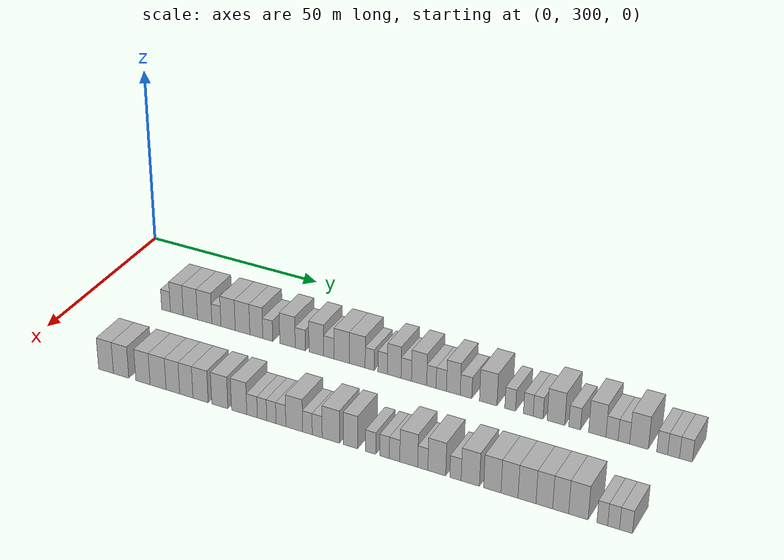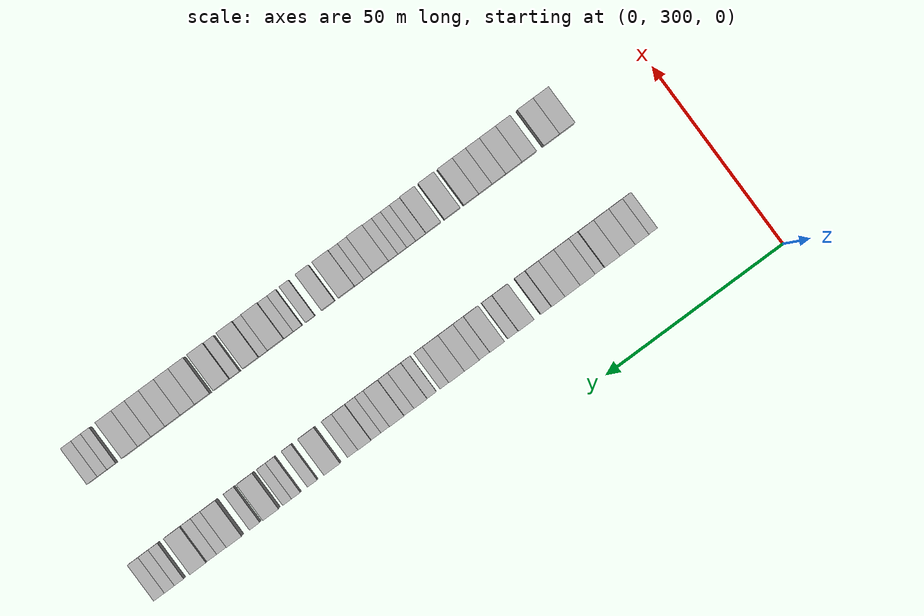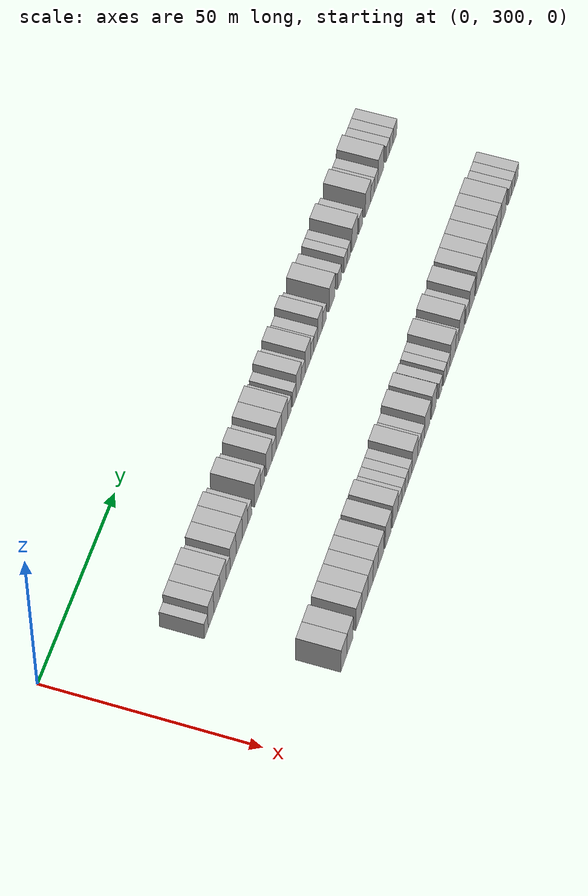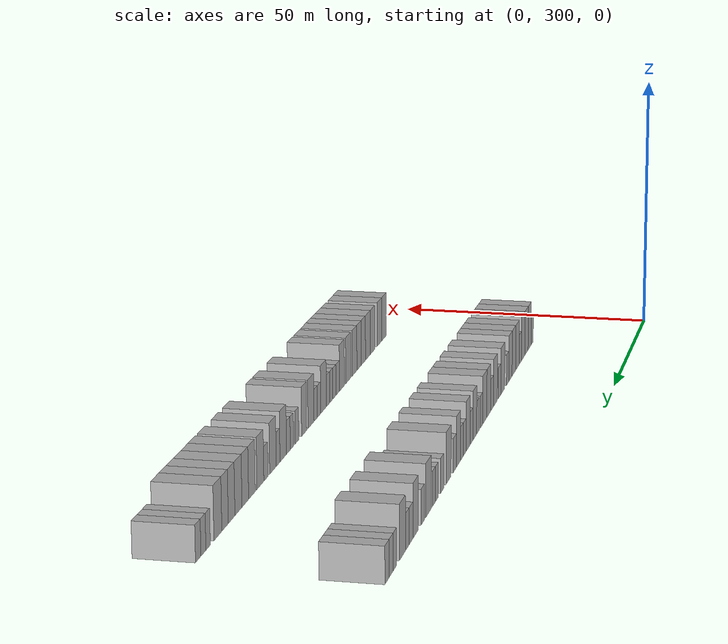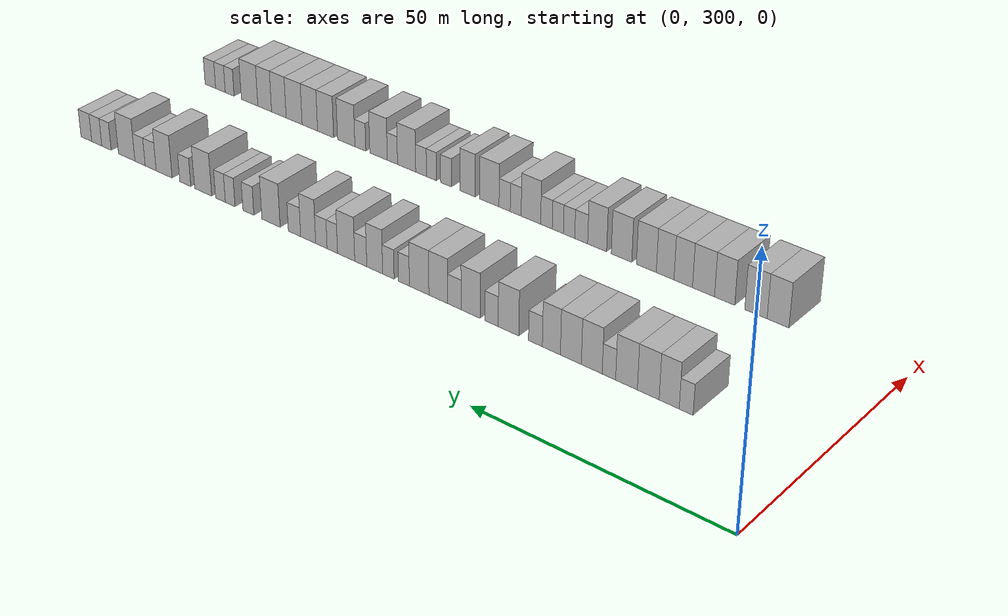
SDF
<sdf version="1.6">
 <world name="default">
  <model name="building_191">
   <static>1</static>
   <pose>25.0000 322.5116 0 0.000000 0.000000 0.000000</pose>
   <link name="link">
    <pose>0 0 3.00 0 0 0</pose>
    <collision name="collision"><geometry><box><size>10.0000 2.6368 6.0000</size></box></geometry></collision>
    <visual name="visual">
     <cast_shadows>0</cast_shadows>
     <geometry><box><size>10.0000 2.6368 6.0000</size></box></geometry>
     <material>
      <script>
       <uri>model://HANNAS_wall/materials/scripts</uri>
       <uri>model://HANNAS_wall/materials/textures</uri>
       <name>vrc/HANNAS_wall</name>
      </script>
     </material>
    </visual>
   </link>
  </model>
  <model name="building_192">
   <static>1</static>
   <pose>25.0000 325.7472 0 0.000000 0.000000 0.000000</pose>
   <link name="link">
    <pose>0 0 4.50 0 0 0</pose>
    <collision name="collision"><geometry><box><size>10.0000 3.8342 9.0000</size></box></geometry></collision>
    <visual name="visual">
     <cast_shadows>0</cast_shadows>
     <geometry><box><size>10.0000 3.8342 9.0000</size></box></geometry>
     <material>
      <script>
       <uri>model://HANNAS_wall/materials/scripts</uri>
       <uri>model://HANNAS_wall/materials/textures</uri>
       <name>vrc/HANNAS_wall</name>
      </script>
     </material>
    </visual>
   </link>
  </model>
  <model name="building_193">
   <static>1</static>
   <pose>25.0000 329.7707 0 0.000000 0.000000 0.000000</pose>
   <link name="link">
    <pose>0 0 4.50 0 0 0</pose>
    <collision name="collision"><geometry><box><size>10.0000 4.2128 9.0000</size></box></geometry></collision>
    <visual name="visual">
     <cast_shadows>0</cast_shadows>
     <geometry><box><size>10.0000 4.2128 9.0000</size></box></geometry>
     <material>
      <script>
       <uri>model://HANNAS_wall/materials/scripts</uri>
       <uri>model://HANNAS_wall/materials/textures</uri>
       <name>vrc/HANNAS_wall</name>
      </script>
     </material>
    </visual>
   </link>
  </model>
  <model name="building_194">
   <static>1</static>
   <pose>25.0000 334.0109 0 0.000000 0.000000 0.000000</pose>
   <link name="link">
    <pose>0 0 4.50 0 0 0</pose>
    <collision name="collision"><geometry><box><size>10.0000 4.2677 9.0000</size></box></geometry></collision>
    <visual name="visual">
     <cast_shadows>0</cast_shadows>
     <geometry><box><size>10.0000 4.2677 9.0000</size></box></geometry>
     <material>
      <script>
       <uri>model://HANNAS_wall/materials/scripts</uri>
       <uri>model://HANNAS_wall/materials/textures</uri>
       <name>vrc/HANNAS_wall</name>
      </script>
     </material>
    </visual>
   </link>
  </model>
  <model name="building_195">
   <static>1</static>
   <pose>25.0000 337.4736 0 0.000000 0.000000 0.000000</pose>
   <link name="link">
    <pose>0 0 3.00 0 0 0</pose>
    <collision name="collision"><geometry><box><size>10.0000 2.6576 6.0000</size></box></geometry></collision>
    <visual name="visual">
     <cast_shadows>0</cast_shadows>
     <geometry><box><size>10.0000 2.6576 6.0000</size></box></geometry>
     <material>
      <script>
       <uri>model://HANNAS_wall/materials/scripts</uri>
       <uri>model://HANNAS_wall/materials/textures</uri>
       <name>vrc/HANNAS_wall</name>
      </script>
     </material>
    </visual>
   </link>
  </model>
  <model name="building_196">
   <static>1</static>
   <pose>25.0000 340.8906 0 0.000000 0.000000 0.000000</pose>
   <link name="link">
    <pose>0 0 4.50 0 0 0</pose>
    <collision name="collision"><geometry><box><size>10.0000 4.1764 9.0000</size></box></geometry></collision>
    <visual name="visual">
     <cast_shadows>0</cast_shadows>
     <geometry><box><size>10.0000 4.1764 9.0000</size></box></geometry>
     <material>
      <script>
       <uri>model://HANNAS_wall/materials/scripts</uri>
       <uri>model://HANNAS_wall/materials/textures</uri>
       <name>vrc/HANNAS_wall</name>
      </script>
     </material>
    </visual>
   </link>
  </model>
  <model name="building_197">
   <static>1</static>
   <pose>25.0000 345.0989 0 0.000000 0.000000 0.000000</pose>
   <link name="link">
    <pose>0 0 4.50 0 0 0</pose>
    <collision name="collision"><geometry><box><size>10.0000 4.2403 9.0000</size></box></geometry></collision>
    <visual name="visual">
     <cast_shadows>0</cast_shadows>
     <geometry><box><size>10.0000 4.2403 9.0000</size></box></geometry>
     <material>
      <script>
       <uri>model://HANNAS_wall/materials/scripts</uri>
       <uri>model://HANNAS_wall/materials/textures</uri>
       <name>vrc/HANNAS_wall</name>
      </script>
     </material>
    </visual>
   </link>
  </model>
  <model name="building_198">
   <static>1</static>
   <pose>25.0000 349.0729 0 0.000000 0.000000 0.000000</pose>
   <link name="link">
    <pose>0 0 4.50 0 0 0</pose>
    <collision name="collision"><geometry><box><size>10.0000 3.7077 9.0000</size></box></geometry></collision>
    <visual name="visual">
     <cast_shadows>0</cast_shadows>
     <geometry><box><size>10.0000 3.7077 9.0000</size></box></geometry>
     <material>
      <script>
       <uri>model://HANNAS_wall/materials/scripts</uri>
       <uri>model://HANNAS_wall/materials/textures</uri>
       <name>vrc/HANNAS_wall</name>
      </script>
     </material>
    </visual>
   </link>
  </model>
  <model name="building_199">
   <static>1</static>
   <pose>25.0000 352.3594 0 0.000000 0.000000 0.000000</pose>
   <link name="link">
    <pose>0 0 3.00 0 0 0</pose>
    <collision name="collision"><geometry><box><size>10.0000 2.8652 6.0000</size></box></geometry></collision>
    <visual name="visual">
     <cast_shadows>0</cast_shadows>
     <geometry><box><size>10.0000 2.8652 6.0000</size></box></geometry>
     <material>
      <script>
       <uri>model://HANNAS_wall/materials/scripts</uri>
       <uri>model://HANNAS_wall/materials/textures</uri>
       <name>vrc/HANNAS_wall</name>
      </script>
     </material>
    </visual>
   </link>
  </model>
  <model name="building_200">
   <static>1</static>
   <pose>25.0000 357.9757 0 0.000000 0.000000 0.000000</pose>
   <link name="link">
    <pose>0 0 4.50 0 0 0</pose>
    <collision name="collision"><geometry><box><size>10.0000 4.3674 9.0000</size></box></geometry></collision>
    <visual name="visual">
     <cast_shadows>0</cast_shadows>
     <geometry><box><size>10.0000 4.3674 9.0000</size></box></geometry>
     <material>
      <script>
       <uri>model://HANNAS_wall/materials/scripts</uri>
       <uri>model://HANNAS_wall/materials/textures</uri>
       <name>vrc/HANNAS_wall</name>
      </script>
     </material>
    </visual>
   </link>
  </model>
  <model name="building_201">
   <static>1</static>
   <pose>25.0000 361.5943 0 0.000000 0.000000 0.000000</pose>
   <link name="link">
    <pose>0 0 3.00 0 0 0</pose>
    <collision name="collision"><geometry><box><size>10.0000 2.8697 6.0000</size></box></geometry></collision>
    <visual name="visual">
     <cast_shadows>0</cast_shadows>
     <geometry><box><size>10.0000 2.8697 6.0000</size></box></geometry>
     <material>
      <script>
       <uri>model://HANNAS_wall/materials/scripts</uri>
       <uri>model://HANNAS_wall/materials/textures</uri>
       <name>vrc/HANNAS_wall</name>
      </script>
     </material>
    </visual>
   </link>
  </model>
  <model name="building_202">
   <static>1</static>
   <pose>25.0000 366.0715 0 0.000000 0.000000 0.000000</pose>
   <link name="link">
    <pose>0 0 4.50 0 0 0</pose>
    <collision name="collision"><geometry><box><size>10.0000 4.0849 9.0000</size></box></geometry></collision>
    <visual name="visual">
     <cast_shadows>0</cast_shadows>
     <geometry><box><size>10.0000 4.0849 9.0000</size></box></geometry>
     <material>
      <script>
       <uri>model://HANNAS_wall/materials/scripts</uri>
       <uri>model://HANNAS_wall/materials/textures</uri>
       <name>vrc/HANNAS_wall</name>
      </script>
     </material>
    </visual>
   </link>
  </model>
  <model name="building_203">
   <static>1</static>
   <pose>25.0000 369.5707 0 0.000000 0.000000 0.000000</pose>
   <link name="link">
    <pose>0 0 3.00 0 0 0</pose>
    <collision name="collision"><geometry><box><size>10.0000 2.9135 6.0000</size></box></geometry></collision>
    <visual name="visual">
     <cast_shadows>0</cast_shadows>
     <geometry><box><size>10.0000 2.9135 6.0000</size></box></geometry>
     <material>
      <script>
       <uri>model://HANNAS_wall/materials/scripts</uri>
       <uri>model://HANNAS_wall/materials/textures</uri>
       <name>vrc/HANNAS_wall</name>
      </script>
     </material>
    </visual>
   </link>
  </model>
  <model name="building_204">
   <static>1</static>
   <pose>25.0000 373.1101 0 0.000000 0.000000 0.000000</pose>
   <link name="link">
    <pose>0 0 4.50 0 0 0</pose>
    <collision name="collision"><geometry><box><size>10.0000 4.1653 9.0000</size></box></geometry></collision>
    <visual name="visual">
     <cast_shadows>0</cast_shadows>
     <geometry><box><size>10.0000 4.1653 9.0000</size></box></geometry>
     <material>
      <script>
       <uri>model://HANNAS_wall/materials/scripts</uri>
       <uri>model://HANNAS_wall/materials/textures</uri>
       <name>vrc/HANNAS_wall</name>
      </script>
     </material>
    </visual>
   </link>
  </model>
  <model name="building_205">
   <static>1</static>
   <pose>25.0000 377.3617 0 0.000000 0.000000 0.000000</pose>
   <link name="link">
    <pose>0 0 4.50 0 0 0</pose>
    <collision name="collision"><geometry><box><size>10.0000 4.3377 9.0000</size></box></geometry></collision>
    <visual name="visual">
     <cast_shadows>0</cast_shadows>
     <geometry><box><size>10.0000 4.3377 9.0000</size></box></geometry>
     <material>
      <script>
       <uri>model://HANNAS_wall/materials/scripts</uri>
       <uri>model://HANNAS_wall/materials/textures</uri>
       <name>vrc/HANNAS_wall</name>
      </script>
     </material>
    </visual>
   </link>
  </model>
  <model name="building_206">
   <static>1</static>
   <pose>25.0000 380.7585 0 0.000000 0.000000 0.000000</pose>
   <link name="link">
    <pose>0 0 3.00 0 0 0</pose>
    <collision name="collision"><geometry><box><size>10.0000 2.4560 6.0000</size></box></geometry></collision>
    <visual name="visual">
     <cast_shadows>0</cast_shadows>
     <geometry><box><size>10.0000 2.4560 6.0000</size></box></geometry>
     <material>
      <script>
       <uri>model://HANNAS_wall/materials/scripts</uri>
       <uri>model://HANNAS_wall/materials/textures</uri>
       <name>vrc/HANNAS_wall</name>
      </script>
     </material>
    </visual>
   </link>
  </model>
  <model name="building_207">
   <static>1</static>
   <pose>25.0000 384.2837 0 0.000000 0.000000 0.000000</pose>
   <link name="link">
    <pose>0 0 3.00 0 0 0</pose>
    <collision name="collision"><geometry><box><size>10.0000 2.5943 6.0000</size></box></geometry></collision>
    <visual name="visual">
     <cast_shadows>0</cast_shadows>
     <geometry><box><size>10.0000 2.5943 6.0000</size></box></geometry>
     <material>
      <script>
       <uri>model://HANNAS_wall/materials/scripts</uri>
       <uri>model://HANNAS_wall/materials/textures</uri>
       <name>vrc/HANNAS_wall</name>
      </script>
     </material>
    </visual>
   </link>
  </model>
  <model name="building_208">
   <static>1</static>
   <pose>25.0000 387.4065 0 0.000000 0.000000 0.000000</pose>
   <link name="link">
    <pose>0 0 4.50 0 0 0</pose>
    <collision name="collision"><geometry><box><size>10.0000 3.6515 9.0000</size></box></geometry></collision>
    <visual name="visual">
     <cast_shadows>0</cast_shadows>
     <geometry><box><size>10.0000 3.6515 9.0000</size></box></geometry>
     <material>
      <script>
       <uri>model://HANNAS_wall/materials/scripts</uri>
       <uri>model://HANNAS_wall/materials/textures</uri>
       <name>vrc/HANNAS_wall</name>
      </script>
     </material>
    </visual>
   </link>
  </model>
  <model name="building_209">
   <static>1</static>
   <pose>25.0000 390.6266 0 0.000000 0.000000 0.000000</pose>
   <link name="link">
    <pose>0 0 3.00 0 0 0</pose>
    <collision name="collision"><geometry><box><size>10.0000 2.7887 6.0000</size></box></geometry></collision>
    <visual name="visual">
     <cast_shadows>0</cast_shadows>
     <geometry><box><size>10.0000 2.7887 6.0000</size></box></geometry>
     <material>
      <script>
       <uri>model://HANNAS_wall/materials/scripts</uri>
       <uri>model://HANNAS_wall/materials/textures</uri>
       <name>vrc/HANNAS_wall</name>
      </script>
     </material>
    </visual>
   </link>
  </model>
  <model name="building_210">
   <static>1</static>
   <pose>25.0000 394.0349 0 0.000000 0.000000 0.000000</pose>
   <link name="link">
    <pose>0 0 4.50 0 0 0</pose>
    <collision name="collision"><geometry><box><size>10.0000 4.0277 9.0000</size></box></geometry></collision>
    <visual name="visual">
     <cast_shadows>0</cast_shadows>
     <geometry><box><size>10.0000 4.0277 9.0000</size></box></geometry>
     <material>
      <script>
       <uri>model://HANNAS_wall/materials/scripts</uri>
       <uri>model://HANNAS_wall/materials/textures</uri>
       <name>vrc/HANNAS_wall</name>
      </script>
     </material>
    </visual>
   </link>
  </model>
  <model name="building_211">
   <static>1</static>
   <pose>25.0000 397.2851 0 0.000000 0.000000 0.000000</pose>
   <link name="link">
    <pose>0 0 3.00 0 0 0</pose>
    <collision name="collision"><geometry><box><size>10.0000 2.4726 6.0000</size></box></geometry></collision>
    <visual name="visual">
     <cast_shadows>0</cast_shadows>
     <geometry><box><size>10.0000 2.4726 6.0000</size></box></geometry>
     <material>
      <script>
       <uri>model://HANNAS_wall/materials/scripts</uri>
       <uri>model://HANNAS_wall/materials/textures</uri>
       <name>vrc/HANNAS_wall</name>
      </script>
     </material>
    </visual>
   </link>
  </model>
  <model name="building_212">
   <static>1</static>
   <pose>25.0000 399.8736 0 0.000000 0.000000 0.000000</pose>
   <link name="link">
    <pose>0 0 3.00 0 0 0</pose>
    <collision name="collision"><geometry><box><size>10.0000 2.7045 6.0000</size></box></geometry></collision>
    <visual name="visual">
     <cast_shadows>0</cast_shadows>
     <geometry><box><size>10.0000 2.7045 6.0000</size></box></geometry>
     <material>
      <script>
       <uri>model://HANNAS_wall/materials/scripts</uri>
       <uri>model://HANNAS_wall/materials/textures</uri>
       <name>vrc/HANNAS_wall</name>
      </script>
     </material>
    </visual>
   </link>
  </model>
  <model name="building_213">
   <static>1</static>
   <pose>25.0000 403.0297 0 0.000000 0.000000 0.000000</pose>
   <link name="link">
    <pose>0 0 4.50 0 0 0</pose>
    <collision name="collision"><geometry><box><size>10.0000 3.6077 9.0000</size></box></geometry></collision>
    <visual name="visual">
     <cast_shadows>0</cast_shadows>
     <geometry><box><size>10.0000 3.6077 9.0000</size></box></geometry>
     <material>
      <script>
       <uri>model://HANNAS_wall/materials/scripts</uri>
       <uri>model://HANNAS_wall/materials/textures</uri>
       <name>vrc/HANNAS_wall</name>
      </script>
     </material>
    </visual>
   </link>
  </model>
  <model name="building_214">
   <static>1</static>
   <pose>25.0000 406.3293 0 0.000000 0.000000 0.000000</pose>
   <link name="link">
    <pose>0 0 3.00 0 0 0</pose>
    <collision name="collision"><geometry><box><size>10.0000 2.9914 6.0000</size></box></geometry></collision>
    <visual name="visual">
     <cast_shadows>0</cast_shadows>
     <geometry><box><size>10.0000 2.9914 6.0000</size></box></geometry>
     <material>
      <script>
       <uri>model://HANNAS_wall/materials/scripts</uri>
       <uri>model://HANNAS_wall/materials/textures</uri>
       <name>vrc/HANNAS_wall</name>
      </script>
     </material>
    </visual>
   </link>
  </model>
  <model name="building_215">
   <static>1</static>
   <pose>25.0000 412.0645 0 0.000000 0.000000 0.000000</pose>
   <link name="link">
    <pose>0 0 4.50 0 0 0</pose>
    <collision name="collision"><geometry><box><size>10.0000 4.4790 9.0000</size></box></geometry></collision>
    <visual name="visual">
     <cast_shadows>0</cast_shadows>
     <geometry><box><size>10.0000 4.4790 9.0000</size></box></geometry>
     <material>
      <script>
       <uri>model://HANNAS_wall/materials/scripts</uri>
       <uri>model://HANNAS_wall/materials/textures</uri>
       <name>vrc/HANNAS_wall</name>
      </script>
     </material>
    </visual>
   </link>
  </model>
  <model name="building_216">
   <static>1</static>
   <pose>25.0000 417.6675 0 0.000000 0.000000 0.000000</pose>
   <link name="link">
    <pose>0 0 3.00 0 0 0</pose>
    <collision name="collision"><geometry><box><size>10.0000 2.7269 6.0000</size></box></geometry></collision>
    <visual name="visual">
     <cast_shadows>0</cast_shadows>
     <geometry><box><size>10.0000 2.7269 6.0000</size></box></geometry>
     <material>
      <script>
       <uri>model://HANNAS_wall/materials/scripts</uri>
       <uri>model://HANNAS_wall/materials/textures</uri>
       <name>vrc/HANNAS_wall</name>
      </script>
     </material>
    </visual>
   </link>
  </model>
  <model name="building_217">
   <static>1</static>
   <pose>25.0000 422.2537 0 0.000000 0.000000 0.000000</pose>
   <link name="link">
    <pose>0 0 3.00 0 0 0</pose>
    <collision name="collision"><geometry><box><size>10.0000 2.4456 6.0000</size></box></geometry></collision>
    <visual name="visual">
     <cast_shadows>0</cast_shadows>
     <geometry><box><size>10.0000 2.4456 6.0000</size></box></geometry>
     <material>
      <script>
       <uri>model://HANNAS_wall/materials/scripts</uri>
       <uri>model://HANNAS_wall/materials/textures</uri>
       <name>vrc/HANNAS_wall</name>
      </script>
     </material>
    </visual>
   </link>
  </model>
  <model name="building_218">
   <static>1</static>
   <pose>25.0000 424.7183 0 0.000000 0.000000 0.000000</pose>
   <link name="link">
    <pose>0 0 3.00 0 0 0</pose>
    <collision name="collision"><geometry><box><size>10.0000 2.4835 6.0000</size></box></geometry></collision>
    <visual name="visual">
     <cast_shadows>0</cast_shadows>
     <geometry><box><size>10.0000 2.4835 6.0000</size></box></geometry>
     <material>
      <script>
       <uri>model://HANNAS_wall/materials/scripts</uri>
       <uri>model://HANNAS_wall/materials/textures</uri>
       <name>vrc/HANNAS_wall</name>
      </script>
     </material>
    </visual>
   </link>
  </model>
  <model name="building_219">
   <static>1</static>
   <pose>25.0000 429.1569 0 0.000000 0.000000 0.000000</pose>
   <link name="link">
    <pose>0 0 4.50 0 0 0</pose>
    <collision name="collision"><geometry><box><size>10.0000 4.3938 9.0000</size></box></geometry></collision>
    <visual name="visual">
     <cast_shadows>0</cast_shadows>
     <geometry><box><size>10.0000 4.3938 9.0000</size></box></geometry>
     <material>
      <script>
       <uri>model://HANNAS_wall/materials/scripts</uri>
       <uri>model://HANNAS_wall/materials/textures</uri>
       <name>vrc/HANNAS_wall</name>
      </script>
     </material>
    </visual>
   </link>
  </model>
  <model name="building_220">
   <static>1</static>
   <pose>25.0000 433.7958 0 0.000000 0.000000 0.000000</pose>
   <link name="link">
    <pose>0 0 3.00 0 0 0</pose>
    <collision name="collision"><geometry><box><size>10.0000 2.8840 6.0000</size></box></geometry></collision>
    <visual name="visual">
     <cast_shadows>0</cast_shadows>
     <geometry><box><size>10.0000 2.8840 6.0000</size></box></geometry>
     <material>
      <script>
       <uri>model://HANNAS_wall/materials/scripts</uri>
       <uri>model://HANNAS_wall/materials/textures</uri>
       <name>vrc/HANNAS_wall</name>
      </script>
     </material>
    </visual>
   </link>
  </model>
  <model name="building_221">
   <static>1</static>
   <pose>25.0000 439.3475 0 0.000000 0.000000 0.000000</pose>
   <link name="link">
    <pose>0 0 4.50 0 0 0</pose>
    <collision name="collision"><geometry><box><size>10.0000 4.2194 9.0000</size></box></geometry></collision>
    <visual name="visual">
     <cast_shadows>0</cast_shadows>
     <geometry><box><size>10.0000 4.2194 9.0000</size></box></geometry>
     <material>
      <script>
       <uri>model://HANNAS_wall/materials/scripts</uri>
       <uri>model://HANNAS_wall/materials/textures</uri>
       <name>vrc/HANNAS_wall</name>
      </script>
     </material>
    </visual>
   </link>
  </model>
  <model name="building_222">
   <static>1</static>
   <pose>25.0000 442.9299 0 0.000000 0.000000 0.000000</pose>
   <link name="link">
    <pose>0 0 3.00 0 0 0</pose>
    <collision name="collision"><geometry><box><size>10.0000 2.9454 6.0000</size></box></geometry></collision>
    <visual name="visual">
     <cast_shadows>0</cast_shadows>
     <geometry><box><size>10.0000 2.9454 6.0000</size></box></geometry>
     <material>
      <script>
       <uri>model://HANNAS_wall/materials/scripts</uri>
       <uri>model://HANNAS_wall/materials/textures</uri>
       <name>vrc/HANNAS_wall</name>
      </script>
     </material>
    </visual>
   </link>
  </model>
  <model name="building_223">
   <static>1</static>
   <pose>25.0000 445.7842 0 0.000000 0.000000 0.000000</pose>
   <link name="link">
    <pose>0 0 3.00 0 0 0</pose>
    <collision name="collision"><geometry><box><size>10.0000 2.7634 6.0000</size></box></geometry></collision>
    <visual name="visual">
     <cast_shadows>0</cast_shadows>
     <geometry><box><size>10.0000 2.7634 6.0000</size></box></geometry>
     <material>
      <script>
       <uri>model://HANNAS_wall/materials/scripts</uri>
       <uri>model://HANNAS_wall/materials/textures</uri>
       <name>vrc/HANNAS_wall</name>
      </script>
     </material>
    </visual>
   </link>
  </model>
  <model name="building_224">
   <static>1</static>
   <pose>25.0000 449.4012 0 0.000000 0.000000 0.000000</pose>
   <link name="link">
    <pose>0 0 4.50 0 0 0</pose>
    <collision name="collision"><geometry><box><size>10.0000 4.4705 9.0000</size></box></geometry></collision>
    <visual name="visual">
     <cast_shadows>0</cast_shadows>
     <geometry><box><size>10.0000 4.4705 9.0000</size></box></geometry>
     <material>
      <script>
       <uri>model://HANNAS_wall/materials/scripts</uri>
       <uri>model://HANNAS_wall/materials/textures</uri>
       <name>vrc/HANNAS_wall</name>
      </script>
     </material>
    </visual>
   </link>
  </model>
  <model name="building_225">
   <static>1</static>
   <pose>25.0000 454.9298 0 0.000000 0.000000 0.000000</pose>
   <link name="link">
    <pose>0 0 3.00 0 0 0</pose>
    <collision name="collision"><geometry><box><size>10.0000 2.5868 6.0000</size></box></geometry></collision>
    <visual name="visual">
     <cast_shadows>0</cast_shadows>
     <geometry><box><size>10.0000 2.5868 6.0000</size></box></geometry>
     <material>
      <script>
       <uri>model://HANNAS_wall/materials/scripts</uri>
       <uri>model://HANNAS_wall/materials/textures</uri>
       <name>vrc/HANNAS_wall</name>
      </script>
     </material>
    </visual>
   </link>
  </model>
  <model name="building_226">
   <static>1</static>
   <pose>25.0000 457.6241 0 0.000000 0.000000 0.000000</pose>
   <link name="link">
    <pose>0 0 3.00 0 0 0</pose>
    <collision name="collision"><geometry><box><size>10.0000 2.8017 6.0000</size></box></geometry></collision>
    <visual name="visual">
     <cast_shadows>0</cast_shadows>
     <geometry><box><size>10.0000 2.8017 6.0000</size></box></geometry>
     <material>
      <script>
       <uri>model://HANNAS_wall/materials/scripts</uri>
       <uri>model://HANNAS_wall/materials/textures</uri>
       <name>vrc/HANNAS_wall</name>
      </script>
     </material>
    </visual>
   </link>
  </model>
  <model name="building_227">
   <static>1</static>
   <pose>25.0000 460.5233 0 0.000000 0.000000 0.000000</pose>
   <link name="link">
    <pose>0 0 3.00 0 0 0</pose>
    <collision name="collision"><geometry><box><size>10.0000 2.9969 6.0000</size></box></geometry></collision>
    <visual name="visual">
     <cast_shadows>0</cast_shadows>
     <geometry><box><size>10.0000 2.9969 6.0000</size></box></geometry>
     <material>
      <script>
       <uri>model://HANNAS_wall/materials/scripts</uri>
       <uri>model://HANNAS_wall/materials/textures</uri>
       <name>vrc/HANNAS_wall</name>
      </script>
     </material>
    </visual>
   </link>
  </model>
  <model name="building_419">
   <static>1</static>
   <pose>55.0000 324.3657 0 0.000000 0.000000 0.000000</pose>
   <link name="link">
    <pose>0 0 4.50 0 0 0</pose>
    <collision name="collision"><geometry><box><size>10.0000 4.2858 9.0000</size></box></geometry></collision>
    <visual name="visual">
     <cast_shadows>0</cast_shadows>
     <geometry><box><size>10.0000 4.2858 9.0000</size></box></geometry>
     <material>
      <script>
       <uri>model://HANNAS_wall/materials/scripts</uri>
       <uri>model://HANNAS_wall/materials/textures</uri>
       <name>vrc/HANNAS_wall</name>
      </script>
     </material>
    </visual>
   </link>
  </model>
  <model name="building_420">
   <static>1</static>
   <pose>55.0000 328.7174 0 0.000000 0.000000 0.000000</pose>
   <link name="link">
    <pose>0 0 4.50 0 0 0</pose>
    <collision name="collision"><geometry><box><size>10.0000 4.4176 9.0000</size></box></geometry></collision>
    <visual name="visual">
     <cast_shadows>0</cast_shadows>
     <geometry><box><size>10.0000 4.4176 9.0000</size></box></geometry>
     <material>
      <script>
       <uri>model://HANNAS_wall/materials/scripts</uri>
       <uri>model://HANNAS_wall/materials/textures</uri>
       <name>vrc/HANNAS_wall</name>
      </script>
     </material>
    </visual>
   </link>
  </model>
  <model name="building_421">
   <static>1</static>
   <pose>55.0000 334.9625 0 0.000000 0.000000 0.000000</pose>
   <link name="link">
    <pose>0 0 4.50 0 0 0</pose>
    <collision name="collision"><geometry><box><size>10.0000 4.0725 9.0000</size></box></geometry></collision>
    <visual name="visual">
     <cast_shadows>0</cast_shadows>
     <geometry><box><size>10.0000 4.0725 9.0000</size></box></geometry>
     <material>
      <script>
       <uri>model://HANNAS_wall/materials/scripts</uri>
       <uri>model://HANNAS_wall/materials/textures</uri>
       <name>vrc/HANNAS_wall</name>
      </script>
     </material>
    </visual>
   </link>
  </model>
  <model name="building_422">
   <static>1</static>
   <pose>55.0000 339.2481 0 0.000000 0.000000 0.000000</pose>
   <link name="link">
    <pose>0 0 4.50 0 0 0</pose>
    <collision name="collision"><geometry><box><size>10.0000 4.4986 9.0000</size></box></geometry></collision>
    <visual name="visual">
     <cast_shadows>0</cast_shadows>
     <geometry><box><size>10.0000 4.4986 9.0000</size></box></geometry>
     <material>
      <script>
       <uri>model://HANNAS_wall/materials/scripts</uri>
       <uri>model://HANNAS_wall/materials/textures</uri>
       <name>vrc/HANNAS_wall</name>
      </script>
     </material>
    </visual>
   </link>
  </model>
  <model name="building_423">
   <static>1</static>
   <pose>55.0000 343.4113 0 0.000000 0.000000 0.000000</pose>
   <link name="link">
    <pose>0 0 4.50 0 0 0</pose>
    <collision name="collision"><geometry><box><size>10.0000 3.8278 9.0000</size></box></geometry></collision>
    <visual name="visual">
     <cast_shadows>0</cast_shadows>
     <geometry><box><size>10.0000 3.8278 9.0000</size></box></geometry>
     <material>
      <script>
       <uri>model://HANNAS_wall/materials/scripts</uri>
       <uri>model://HANNAS_wall/materials/textures</uri>
       <name>vrc/HANNAS_wall</name>
      </script>
     </material>
    </visual>
   </link>
  </model>
  <model name="building_424">
   <static>1</static>
   <pose>55.0000 347.1722 0 0.000000 0.000000 0.000000</pose>
   <link name="link">
    <pose>0 0 4.50 0 0 0</pose>
    <collision name="collision"><geometry><box><size>10.0000 3.6941 9.0000</size></box></geometry></collision>
    <visual name="visual">
     <cast_shadows>0</cast_shadows>
     <geometry><box><size>10.0000 3.6941 9.0000</size></box></geometry>
     <material>
      <script>
       <uri>model://HANNAS_wall/materials/scripts</uri>
       <uri>model://HANNAS_wall/materials/textures</uri>
       <name>vrc/HANNAS_wall</name>
      </script>
     </material>
    </visual>
   </link>
  </model>
  <model name="building_425">
   <static>1</static>
   <pose>55.0000 351.1131 0 0.000000 0.000000 0.000000</pose>
   <link name="link">
    <pose>0 0 4.50 0 0 0</pose>
    <collision name="collision"><geometry><box><size>10.0000 4.1876 9.0000</size></box></geometry></collision>
    <visual name="visual">
     <cast_shadows>0</cast_shadows>
     <geometry><box><size>10.0000 4.1876 9.0000</size></box></geometry>
     <material>
      <script>
       <uri>model://HANNAS_wall/materials/scripts</uri>
       <uri>model://HANNAS_wall/materials/textures</uri>
       <name>vrc/HANNAS_wall</name>
      </script>
     </material>
    </visual>
   </link>
  </model>
  <model name="building_426">
   <static>1</static>
   <pose>55.0000 356.4046 0 0.000000 0.000000 0.000000</pose>
   <link name="link">
    <pose>0 0 4.50 0 0 0</pose>
    <collision name="collision"><geometry><box><size>10.0000 4.3956 9.0000</size></box></geometry></collision>
    <visual name="visual">
     <cast_shadows>0</cast_shadows>
     <geometry><box><size>10.0000 4.3956 9.0000</size></box></geometry>
     <material>
      <script>
       <uri>model://HANNAS_wall/materials/scripts</uri>
       <uri>model://HANNAS_wall/materials/textures</uri>
       <name>vrc/HANNAS_wall</name>
      </script>
     </material>
    </visual>
   </link>
  </model>
  <model name="building_427">
   <static>1</static>
   <pose>55.0000 361.6714 0 0.000000 0.000000 0.000000</pose>
   <link name="link">
    <pose>0 0 4.50 0 0 0</pose>
    <collision name="collision"><geometry><box><size>10.0000 4.1380 9.0000</size></box></geometry></collision>
    <visual name="visual">
     <cast_shadows>0</cast_shadows>
     <geometry><box><size>10.0000 4.1380 9.0000</size></box></geometry>
     <material>
      <script>
       <uri>model://HANNAS_wall/materials/scripts</uri>
       <uri>model://HANNAS_wall/materials/textures</uri>
       <name>vrc/HANNAS_wall</name>
      </script>
     </material>
    </visual>
   </link>
  </model>
  <model name="building_428">
   <static>1</static>
   <pose>55.0000 365.1601 0 0.000000 0.000000 0.000000</pose>
   <link name="link">
    <pose>0 0 3.00 0 0 0</pose>
    <collision name="collision"><geometry><box><size>10.0000 2.8395 6.0000</size></box></geometry></collision>
    <visual name="visual">
     <cast_shadows>0</cast_shadows>
     <geometry><box><size>10.0000 2.8395 6.0000</size></box></geometry>
     <material>
      <script>
       <uri>model://HANNAS_wall/materials/scripts</uri>
       <uri>model://HANNAS_wall/materials/textures</uri>
       <name>vrc/HANNAS_wall</name>
      </script>
     </material>
    </visual>
   </link>
  </model>
  <model name="building_429">
   <static>1</static>
   <pose>55.0000 367.8294 0 0.000000 0.000000 0.000000</pose>
   <link name="link">
    <pose>0 0 3.00 0 0 0</pose>
    <collision name="collision"><geometry><box><size>10.0000 2.4991 6.0000</size></box></geometry></collision>
    <visual name="visual">
     <cast_shadows>0</cast_shadows>
     <geometry><box><size>10.0000 2.4991 6.0000</size></box></geometry>
     <material>
      <script>
       <uri>model://HANNAS_wall/materials/scripts</uri>
       <uri>model://HANNAS_wall/materials/textures</uri>
       <name>vrc/HANNAS_wall</name>
      </script>
     </material>
    </visual>
   </link>
  </model>
  <model name="building_430">
   <static>1</static>
   <pose>55.0000 370.3248 0 0.000000 0.000000 0.000000</pose>
   <link name="link">
    <pose>0 0 3.00 0 0 0</pose>
    <collision name="collision"><geometry><box><size>10.0000 2.4916 6.0000</size></box></geometry></collision>
    <visual name="visual">
     <cast_shadows>0</cast_shadows>
     <geometry><box><size>10.0000 2.4916 6.0000</size></box></geometry>
     <material>
      <script>
       <uri>model://HANNAS_wall/materials/scripts</uri>
       <uri>model://HANNAS_wall/materials/textures</uri>
       <name>vrc/HANNAS_wall</name>
      </script>
     </material>
    </visual>
   </link>
  </model>
  <model name="building_431">
   <static>1</static>
   <pose>55.0000 372.8693 0 0.000000 0.000000 0.000000</pose>
   <link name="link">
    <pose>0 0 3.00 0 0 0</pose>
    <collision name="collision"><geometry><box><size>10.0000 2.5974 6.0000</size></box></geometry></collision>
    <visual name="visual">
     <cast_shadows>0</cast_shadows>
     <geometry><box><size>10.0000 2.5974 6.0000</size></box></geometry>
     <material>
      <script>
       <uri>model://HANNAS_wall/materials/scripts</uri>
       <uri>model://HANNAS_wall/materials/textures</uri>
       <name>vrc/HANNAS_wall</name>
      </script>
     </material>
    </visual>
   </link>
  </model>
  <model name="building_432">
   <static>1</static>
   <pose>55.0000 376.3760 0 0.000000 0.000000 0.000000</pose>
   <link name="link">
    <pose>0 0 4.50 0 0 0</pose>
    <collision name="collision"><geometry><box><size>10.0000 4.4160 9.0000</size></box></geometry></collision>
    <visual name="visual">
     <cast_shadows>0</cast_shadows>
     <geometry><box><size>10.0000 4.4160 9.0000</size></box></geometry>
     <material>
      <script>
       <uri>model://HANNAS_wall/materials/scripts</uri>
       <uri>model://HANNAS_wall/materials/textures</uri>
       <name>vrc/HANNAS_wall</name>
      </script>
     </material>
    </visual>
   </link>
  </model>
  <model name="building_433">
   <static>1</static>
   <pose>55.0000 379.8387 0 0.000000 0.000000 0.000000</pose>
   <link name="link">
    <pose>0 0 3.00 0 0 0</pose>
    <collision name="collision"><geometry><box><size>10.0000 2.5094 6.0000</size></box></geometry></collision>
    <visual name="visual">
     <cast_shadows>0</cast_shadows>
     <geometry><box><size>10.0000 2.5094 6.0000</size></box></geometry>
     <material>
      <script>
       <uri>model://HANNAS_wall/materials/scripts</uri>
       <uri>model://HANNAS_wall/materials/textures</uri>
       <name>vrc/HANNAS_wall</name>
      </script>
     </material>
    </visual>
   </link>
  </model>
  <model name="building_434">
   <static>1</static>
   <pose>55.0000 382.3828 0 0.000000 0.000000 0.000000</pose>
   <link name="link">
    <pose>0 0 3.00 0 0 0</pose>
    <collision name="collision"><geometry><box><size>10.0000 2.5788 6.0000</size></box></geometry></collision>
    <visual name="visual">
     <cast_shadows>0</cast_shadows>
     <geometry><box><size>10.0000 2.5788 6.0000</size></box></geometry>
     <material>
      <script>
       <uri>model://HANNAS_wall/materials/scripts</uri>
       <uri>model://HANNAS_wall/materials/textures</uri>
       <name>vrc/HANNAS_wall</name>
      </script>
     </material>
    </visual>
   </link>
  </model>
  <model name="building_435">
   <static>1</static>
   <pose>55.0000 385.9219 0 0.000000 0.000000 0.000000</pose>
   <link name="link">
    <pose>0 0 4.50 0 0 0</pose>
    <collision name="collision"><geometry><box><size>10.0000 4.4993 9.0000</size></box></geometry></collision>
    <visual name="visual">
     <cast_shadows>0</cast_shadows>
     <geometry><box><size>10.0000 4.4993 9.0000</size></box></geometry>
     <material>
      <script>
       <uri>model://HANNAS_wall/materials/scripts</uri>
       <uri>model://HANNAS_wall/materials/textures</uri>
       <name>vrc/HANNAS_wall</name>
      </script>
     </material>
    </visual>
   </link>
  </model>
  <model name="building_436">
   <static>1</static>
   <pose>55.0000 390.9993 0 0.000000 0.000000 0.000000</pose>
   <link name="link">
    <pose>0 0 4.50 0 0 0</pose>
    <collision name="collision"><geometry><box><size>10.0000 3.6555 9.0000</size></box></geometry></collision>
    <visual name="visual">
     <cast_shadows>0</cast_shadows>
     <geometry><box><size>10.0000 3.6555 9.0000</size></box></geometry>
     <material>
      <script>
       <uri>model://HANNAS_wall/materials/scripts</uri>
       <uri>model://HANNAS_wall/materials/textures</uri>
       <name>vrc/HANNAS_wall</name>
      </script>
     </material>
    </visual>
   </link>
  </model>
  <model name="building_437">
   <static>1</static>
   <pose>55.0000 396.1258 0 0.000000 0.000000 0.000000</pose>
   <link name="link">
    <pose>0 0 3.00 0 0 0</pose>
    <collision name="collision"><geometry><box><size>10.0000 2.5975 6.0000</size></box></geometry></collision>
    <visual name="visual">
     <cast_shadows>0</cast_shadows>
     <geometry><box><size>10.0000 2.5975 6.0000</size></box></geometry>
     <material>
      <script>
       <uri>model://HANNAS_wall/materials/scripts</uri>
       <uri>model://HANNAS_wall/materials/textures</uri>
       <name>vrc/HANNAS_wall</name>
      </script>
     </material>
    </visual>
   </link>
  </model>
  <model name="building_438">
   <static>1</static>
   <pose>55.0000 399.6265 0 0.000000 0.000000 0.000000</pose>
   <link name="link">
    <pose>0 0 3.00 0 0 0</pose>
    <collision name="collision"><geometry><box><size>10.0000 2.4039 6.0000</size></box></geometry></collision>
    <visual name="visual">
     <cast_shadows>0</cast_shadows>
     <geometry><box><size>10.0000 2.4039 6.0000</size></box></geometry>
     <material>
      <script>
       <uri>model://HANNAS_wall/materials/scripts</uri>
       <uri>model://HANNAS_wall/materials/textures</uri>
       <name>vrc/HANNAS_wall</name>
      </script>
     </material>
    </visual>
   </link>
  </model>
  <model name="building_439">
   <static>1</static>
   <pose>55.0000 402.1392 0 0.000000 0.000000 0.000000</pose>
   <link name="link">
    <pose>0 0 3.00 0 0 0</pose>
    <collision name="collision"><geometry><box><size>10.0000 2.6217 6.0000</size></box></geometry></collision>
    <visual name="visual">
     <cast_shadows>0</cast_shadows>
     <geometry><box><size>10.0000 2.6217 6.0000</size></box></geometry>
     <material>
      <script>
       <uri>model://HANNAS_wall/materials/scripts</uri>
       <uri>model://HANNAS_wall/materials/textures</uri>
       <name>vrc/HANNAS_wall</name>
      </script>
     </material>
    </visual>
   </link>
  </model>
  <model name="building_440">
   <static>1</static>
   <pose>55.0000 405.6820 0 0.000000 0.000000 0.000000</pose>
   <link name="link">
    <pose>0 0 4.50 0 0 0</pose>
    <collision name="collision"><geometry><box><size>10.0000 4.4638 9.0000</size></box></geometry></collision>
    <visual name="visual">
     <cast_shadows>0</cast_shadows>
     <geometry><box><size>10.0000 4.4638 9.0000</size></box></geometry>
     <material>
      <script>
       <uri>model://HANNAS_wall/materials/scripts</uri>
       <uri>model://HANNAS_wall/materials/textures</uri>
       <name>vrc/HANNAS_wall</name>
      </script>
     </material>
    </visual>
   </link>
  </model>
  <model name="building_441">
   <static>1</static>
   <pose>55.0000 409.1719 0 0.000000 0.000000 0.000000</pose>
   <link name="link">
    <pose>0 0 3.00 0 0 0</pose>
    <collision name="collision"><geometry><box><size>10.0000 2.5160 6.0000</size></box></geometry></collision>
    <visual name="visual">
     <cast_shadows>0</cast_shadows>
     <geometry><box><size>10.0000 2.5160 6.0000</size></box></geometry>
     <material>
      <script>
       <uri>model://HANNAS_wall/materials/scripts</uri>
       <uri>model://HANNAS_wall/materials/textures</uri>
       <name>vrc/HANNAS_wall</name>
      </script>
     </material>
    </visual>
   </link>
  </model>
  <model name="building_442">
   <static>1</static>
   <pose>55.0000 412.6204 0 0.000000 0.000000 0.000000</pose>
   <link name="link">
    <pose>0 0 4.50 0 0 0</pose>
    <collision name="collision"><geometry><box><size>10.0000 4.3811 9.0000</size></box></geometry></collision>
    <visual name="visual">
     <cast_shadows>0</cast_shadows>
     <geometry><box><size>10.0000 4.3811 9.0000</size></box></geometry>
     <material>
      <script>
       <uri>model://HANNAS_wall/materials/scripts</uri>
       <uri>model://HANNAS_wall/materials/textures</uri>
       <name>vrc/HANNAS_wall</name>
      </script>
     </material>
    </visual>
   </link>
  </model>
  <model name="building_443">
   <static>1</static>
   <pose>55.0000 417.1912 0 0.000000 0.000000 0.000000</pose>
   <link name="link">
    <pose>0 0 3.00 0 0 0</pose>
    <collision name="collision"><geometry><box><size>10.0000 2.7606 6.0000</size></box></geometry></collision>
    <visual name="visual">
     <cast_shadows>0</cast_shadows>
     <geometry><box><size>10.0000 2.7606 6.0000</size></box></geometry>
     <material>
      <script>
       <uri>model://HANNAS_wall/materials/scripts</uri>
       <uri>model://HANNAS_wall/materials/textures</uri>
       <name>vrc/HANNAS_wall</name>
      </script>
     </material>
    </visual>
   </link>
  </model>
  <model name="building_444">
   <static>1</static>
   <pose>55.0000 420.7845 0 0.000000 0.000000 0.000000</pose>
   <link name="link">
    <pose>0 0 4.50 0 0 0</pose>
    <collision name="collision"><geometry><box><size>10.0000 4.4261 9.0000</size></box></geometry></collision>
    <visual name="visual">
     <cast_shadows>0</cast_shadows>
     <geometry><box><size>10.0000 4.4261 9.0000</size></box></geometry>
     <material>
      <script>
       <uri>model://HANNAS_wall/materials/scripts</uri>
       <uri>model://HANNAS_wall/materials/textures</uri>
       <name>vrc/HANNAS_wall</name>
      </script>
     </material>
    </visual>
   </link>
  </model>
  <model name="building_445">
   <static>1</static>
   <pose>55.0000 426.0749 0 0.000000 0.000000 0.000000</pose>
   <link name="link">
    <pose>0 0 4.50 0 0 0</pose>
    <collision name="collision"><geometry><box><size>10.0000 4.1547 9.0000</size></box></geometry></collision>
    <visual name="visual">
     <cast_shadows>0</cast_shadows>
     <geometry><box><size>10.0000 4.1547 9.0000</size></box></geometry>
     <material>
      <script>
       <uri>model://HANNAS_wall/materials/scripts</uri>
       <uri>model://HANNAS_wall/materials/textures</uri>
       <name>vrc/HANNAS_wall</name>
      </script>
     </material>
    </visual>
   </link>
  </model>
  <model name="building_446">
   <static>1</static>
   <pose>55.0000 430.1730 0 0.000000 0.000000 0.000000</pose>
   <link name="link">
    <pose>0 0 4.50 0 0 0</pose>
    <collision name="collision"><geometry><box><size>10.0000 4.0416 9.0000</size></box></geometry></collision>
    <visual name="visual">
     <cast_shadows>0</cast_shadows>
     <geometry><box><size>10.0000 4.0416 9.0000</size></box></geometry>
     <material>
      <script>
       <uri>model://HANNAS_wall/materials/scripts</uri>
       <uri>model://HANNAS_wall/materials/textures</uri>
       <name>vrc/HANNAS_wall</name>
      </script>
     </material>
    </visual>
   </link>
  </model>
  <model name="building_447">
   <static>1</static>
   <pose>55.0000 434.3041 0 0.000000 0.000000 0.000000</pose>
   <link name="link">
    <pose>0 0 4.50 0 0 0</pose>
    <collision name="collision"><geometry><box><size>10.0000 4.2205 9.0000</size></box></geometry></collision>
    <visual name="visual">
     <cast_shadows>0</cast_shadows>
     <geometry><box><size>10.0000 4.2205 9.0000</size></box></geometry>
     <material>
      <script>
       <uri>model://HANNAS_wall/materials/scripts</uri>
       <uri>model://HANNAS_wall/materials/textures</uri>
       <name>vrc/HANNAS_wall</name>
      </script>
     </material>
    </visual>
   </link>
  </model>
  <model name="building_448">
   <static>1</static>
   <pose>55.0000 438.3595 0 0.000000 0.000000 0.000000</pose>
   <link name="link">
    <pose>0 0 4.50 0 0 0</pose>
    <collision name="collision"><geometry><box><size>10.0000 3.8903 9.0000</size></box></geometry></collision>
    <visual name="visual">
     <cast_shadows>0</cast_shadows>
     <geometry><box><size>10.0000 3.8903 9.0000</size></box></geometry>
     <material>
      <script>
       <uri>model://HANNAS_wall/materials/scripts</uri>
       <uri>model://HANNAS_wall/materials/textures</uri>
       <name>vrc/HANNAS_wall</name>
      </script>
     </material>
    </visual>
   </link>
  </model>
  <model name="building_449">
   <static>1</static>
   <pose>55.0000 442.1577 0 0.000000 0.000000 0.000000</pose>
   <link name="link">
    <pose>0 0 4.50 0 0 0</pose>
    <collision name="collision"><geometry><box><size>10.0000 3.7061 9.0000</size></box></geometry></collision>
    <visual name="visual">
     <cast_shadows>0</cast_shadows>
     <geometry><box><size>10.0000 3.7061 9.0000</size></box></geometry>
     <material>
      <script>
       <uri>model://HANNAS_wall/materials/scripts</uri>
       <uri>model://HANNAS_wall/materials/textures</uri>
       <name>vrc/HANNAS_wall</name>
      </script>
     </material>
    </visual>
   </link>
  </model>
  <model name="building_450">
   <static>1</static>
   <pose>55.0000 446.2504 0 0.000000 0.000000 0.000000</pose>
   <link name="link">
    <pose>0 0 4.50 0 0 0</pose>
    <collision name="collision"><geometry><box><size>10.0000 4.4793 9.0000</size></box></geometry></collision>
    <visual name="visual">
     <cast_shadows>0</cast_shadows>
     <geometry><box><size>10.0000 4.4793 9.0000</size></box></geometry>
     <material>
      <script>
       <uri>model://HANNAS_wall/materials/scripts</uri>
       <uri>model://HANNAS_wall/materials/textures</uri>
       <name>vrc/HANNAS_wall</name>
      </script>
     </material>
    </visual>
   </link>
  </model>
  <model name="building_451">
   <static>1</static>
   <pose>55.0000 451.7088 0 0.000000 0.000000 0.000000</pose>
   <link name="link">
    <pose>0 0 3.00 0 0 0</pose>
    <collision name="collision"><geometry><box><size>10.0000 2.4376 6.0000</size></box></geometry></collision>
    <visual name="visual">
     <cast_shadows>0</cast_shadows>
     <geometry><box><size>10.0000 2.4376 6.0000</size></box></geometry>
     <material>
      <script>
       <uri>model://HANNAS_wall/materials/scripts</uri>
       <uri>model://HANNAS_wall/materials/textures</uri>
       <name>vrc/HANNAS_wall</name>
      </script>
     </material>
    </visual>
   </link>
  </model>
  <model name="building_452">
   <static>1</static>
   <pose>55.0000 454.2718 0 0.000000 0.000000 0.000000</pose>
   <link name="link">
    <pose>0 0 3.00 0 0 0</pose>
    <collision name="collision"><geometry><box><size>10.0000 2.6883 6.0000</size></box></geometry></collision>
    <visual name="visual">
     <cast_shadows>0</cast_shadows>
     <geometry><box><size>10.0000 2.6883 6.0000</size></box></geometry>
     <material>
      <script>
       <uri>model://HANNAS_wall/materials/scripts</uri>
       <uri>model://HANNAS_wall/materials/textures</uri>
       <name>vrc/HANNAS_wall</name>
      </script>
     </material>
    </visual>
   </link>
  </model>
  <model name="building_453">
   <static>1</static>
   <pose>55.0000 457.0721 0 0.000000 0.000000 0.000000</pose>
   <link name="link">
    <pose>0 0 3.00 0 0 0</pose>
    <collision name="collision"><geometry><box><size>10.0000 2.9125 6.0000</size></box></geometry></collision>
    <visual name="visual">
     <cast_shadows>0</cast_shadows>
     <geometry><box><size>10.0000 2.9125 6.0000</size></box></geometry>
     <material>
      <script>
       <uri>model://HANNAS_wall/materials/scripts</uri>
       <uri>model://HANNAS_wall/materials/textures</uri>
       <name>vrc/HANNAS_wall</name>
      </script>
     </material>
    </visual>
   </link>
  </model>
 </world>
</sdf>
